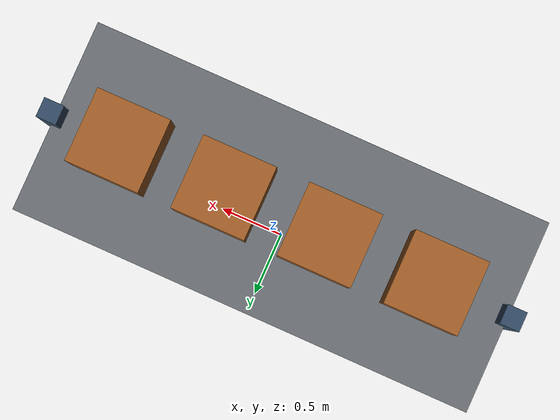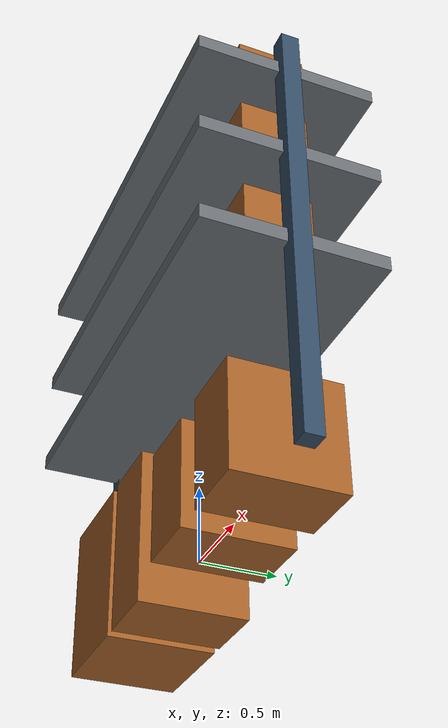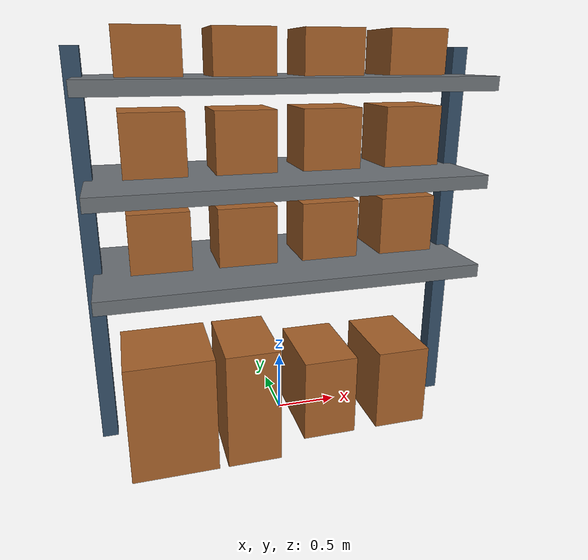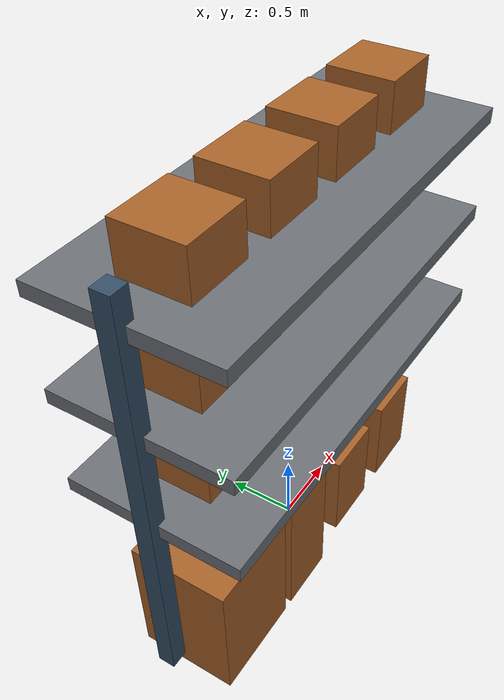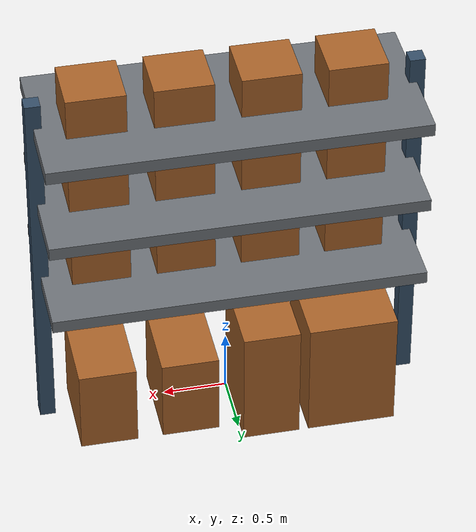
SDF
<?xml version="1.0"?>

<sdf version="1.9">
  <model name="warehouse_rack">
    <static>true</static>

    <!-- ================= RACK POSTS ================= -->

    <link name="left_post">
      <pose>-1.44 0 1.5 0 0 0</pose>

      <visual name="visual">
        <geometry>
          <box><size>0.12 0.12 3.0</size></box>
        </geometry>
        <material>
          <ambient>0.12 0.18 0.24 1</ambient>
          <diffuse>0.20 0.30 0.40 1</diffuse>
          <specular>0.25 0.25 0.25 1</specular>
        </material>
      </visual>

      <collision name="collision">
        <geometry>
          <box><size>0.12 0.12 3.0</size></box>
        </geometry>
      </collision>
    </link>

    <link name="right_post">
      <pose>1.44 0 1.5 0 0 0</pose>

      <visual name="visual">
        <geometry>
          <box><size>0.12 0.12 3.0</size></box>
        </geometry>
        <material>
          <ambient>0.12 0.18 0.24 1</ambient>
          <diffuse>0.20 0.30 0.40 1</diffuse>
          <specular>0.25 0.25 0.25 1</specular>
        </material>
      </visual>

      <collision name="collision">
        <geometry>
          <box><size>0.12 0.12 3.0</size></box>
        </geometry>
      </collision>
    </link>

    <!-- ================= SHELF LEVELS ================= -->

    <link name="shelf_2">
      <pose>0 0 1.35 0 0 0</pose>
      <visual name="visual">
        <geometry>
          <box><size>2.88 1.2 0.10</size></box>
        </geometry>
        <material>
          <ambient>0.28 0.30 0.32 1</ambient>
          <diffuse>0.42 0.44 0.46 1</diffuse>
          <specular>0.20 0.20 0.20 1</specular>
        </material>
      </visual>
      <collision name="collision">
        <geometry>
          <box><size>2.88 1.2 0.10</size></box>
        </geometry>
      </collision>
    </link>

    <link name="shelf_3">
      <pose>0 0 2.05 0 0 0</pose>
      <visual name="visual">
        <geometry>
          <box><size>2.88 1.2 0.10</size></box>
        </geometry>
        <material>
          <ambient>0.28 0.30 0.32 1</ambient>
          <diffuse>0.42 0.44 0.46 1</diffuse>
          <specular>0.20 0.20 0.20 1</specular>
        </material>
      </visual>
      <collision name="collision">
        <geometry>
          <box><size>2.88 1.2 0.10</size></box>
        </geometry>
      </collision>
    </link>

    <link name="shelf_4">
      <pose>0 0 2.75 0 0 0</pose>
      <visual name="visual">
        <geometry>
          <box><size>2.88 1.2 0.10</size></box>
        </geometry>
        <material>
          <ambient>0.28 0.30 0.32 1</ambient>
          <diffuse>0.42 0.44 0.46 1</diffuse>
          <specular>0.20 0.20 0.20 1</specular>
        </material>
      </visual>
      <collision name="collision">
        <geometry>
          <box><size>2.88 1.2 0.10</size></box>
        </geometry>
      </collision>
    </link>

    <!-- ================= BOXES LEVEL 1 ================= -->

    <link name="box_1_1">
      <pose>-0.95 0 0.225 0 0 0</pose>
      <visual name="visual">
        <geometry><box><size>0.70 0.70 1.0</size></box></geometry>
        <material>
          <ambient>0.45 0.25 0.10 1</ambient>
          <diffuse>0.65 0.38 0.16 1</diffuse>
          <specular>0.05 0.05 0.05 1</specular>
        </material>
      </visual>
      <collision name="collision">
        <geometry><box><size>0.70 0.70 1.0</size></box></geometry>
      </collision>
    </link>

    <link name="box_1_2">
      <pose>-0.30 0 0.225 0 0 0</pose>
      <visual name="visual">
        <geometry><box><size>0.45 0.70 1.0</size></box></geometry>
        <material>
          <ambient>0.45 0.25 0.10 1</ambient>
          <diffuse>0.65 0.38 0.16 1</diffuse>
          <specular>0.05 0.05 0.05 1</specular>
        </material>
      </visual>
      <collision name="collision">
        <geometry><box><size>0.45 0.70 1.0</size></box></geometry>
      </collision>
    </link>

    <link name="box_1_3">
      <pose>0.35 0 0.225 0 0 0</pose>
      <visual name="visual">
        <geometry><box><size>0.45 0.70 0.70</size></box></geometry>
        <material>
          <ambient>0.45 0.25 0.10 1</ambient>
          <diffuse>0.65 0.38 0.16 1</diffuse>
          <specular>0.05 0.05 0.05 1</specular>
        </material>
      </visual>
      <collision name="collision">
        <geometry><box><size>0.45 0.70 0.70</size></box></geometry>
      </collision>
    </link>

    <link name="box_1_4">
      <pose>1.00 0 0.225 0 0 0</pose>
      <visual name="visual">
        <geometry><box><size>0.45 0.70 0.70</size></box></geometry>
        <material>
          <ambient>0.45 0.25 0.10 1</ambient>
          <diffuse>0.65 0.38 0.16 1</diffuse>
          <specular>0.05 0.05 0.05 1</specular>
        </material>
      </visual>
      <collision name="collision">
        <geometry><box><size>0.45 0.70 0.70</size></box></geometry>
      </collision>
    </link>

    <!-- ================= BOXES LEVEL 2 ================= -->

    <link name="box_2_1">
      <pose>-0.95 0 1.65 0 0 0</pose>
      <visual name="visual">
        <geometry><box><size>0.45 0.45 0.45</size></box></geometry>
        <material>
          <ambient>0.45 0.25 0.10 1</ambient>
          <diffuse>0.65 0.38 0.16 1</diffuse>
          <specular>0.05 0.05 0.05 1</specular>
        </material>
      </visual>
      <collision name="collision">
        <geometry><box><size>0.45 0.45 0.45</size></box></geometry>
      </collision>
    </link>

    <link name="box_2_2">
      <pose>-0.30 0 1.65 0 0 0</pose>
      <visual name="visual">
        <geometry><box><size>0.45 0.45 0.45</size></box></geometry>
        <material>
          <ambient>0.45 0.25 0.10 1</ambient>
          <diffuse>0.65 0.38 0.16 1</diffuse>
          <specular>0.05 0.05 0.05 1</specular>
        </material>
      </visual>
      <collision name="collision">
        <geometry><box><size>0.45 0.45 0.45</size></box></geometry>
      </collision>
    </link>

    <link name="box_2_3">
      <pose>0.35 0 1.65 0 0 0</pose>
      <visual name="visual">
        <geometry><box><size>0.45 0.45 0.45</size></box></geometry>
        <material>
          <ambient>0.45 0.25 0.10 1</ambient>
          <diffuse>0.65 0.38 0.16 1</diffuse>
          <specular>0.05 0.05 0.05 1</specular>
        </material>
      </visual>
      <collision name="collision">
        <geometry><box><size>0.45 0.45 0.45</size></box></geometry>
      </collision>
    </link>

    <link name="box_2_4">
      <pose>1.00 0 1.65 0 0 0</pose>
      <visual name="visual">
        <geometry><box><size>0.45 0.45 0.45</size></box></geometry>
        <material>
          <ambient>0.45 0.25 0.10 1</ambient>
          <diffuse>0.65 0.38 0.16 1</diffuse>
          <specular>0.05 0.05 0.05 1</specular>
        </material>
      </visual>
      <collision name="collision">
        <geometry><box><size>0.45 0.45 0.45</size></box></geometry>
      </collision>
    </link>

    <!-- ================= BOXES LEVEL 3 ================= -->

    <link name="box_3_1">
      <pose>-0.95 0 2.35 0 0 0</pose>
      <visual name="visual">
        <geometry><box><size>0.45 0.45 0.45</size></box></geometry>
        <material>
          <ambient>0.45 0.25 0.10 1</ambient>
          <diffuse>0.65 0.38 0.16 1</diffuse>
          <specular>0.05 0.05 0.05 1</specular>
        </material>
      </visual>
      <collision name="collision">
        <geometry><box><size>0.45 0.45 0.45</size></box></geometry>
      </collision>
    </link>

    <link name="box_3_2">
      <pose>-0.30 0 2.35 0 0 0</pose>
      <visual name="visual">
        <geometry><box><size>0.45 0.45 0.45</size></box></geometry>
        <material>
          <ambient>0.45 0.25 0.10 1</ambient>
          <diffuse>0.65 0.38 0.16 1</diffuse>
          <specular>0.05 0.05 0.05 1</specular>
        </material>
      </visual>
      <collision name="collision">
        <geometry><box><size>0.45 0.45 0.45</size></box></geometry>
      </collision>
    </link>

    <link name="box_3_3">
      <pose>0.35 0 2.35 0 0 0</pose>
      <visual name="visual">
        <geometry><box><size>0.45 0.45 0.45</size></box></geometry>
        <material>
          <ambient>0.45 0.25 0.10 1</ambient>
          <diffuse>0.65 0.38 0.16 1</diffuse>
          <specular>0.05 0.05 0.05 1</specular>
        </material>
      </visual>
      <collision name="collision">
        <geometry><box><size>0.45 0.45 0.45</size></box></geometry>
      </collision>
    </link>

    <link name="box_3_4">
      <pose>1.00 0 2.35 0 0 0</pose>
      <visual name="visual">
        <geometry><box><size>0.45 0.45 0.45</size></box></geometry>
        <material>
          <ambient>0.45 0.25 0.10 1</ambient>
          <diffuse>0.65 0.38 0.16 1</diffuse>
          <specular>0.05 0.05 0.05 1</specular>
        </material>
      </visual>
      <collision name="collision">
        <geometry><box><size>0.45 0.45 0.45</size></box></geometry>
      </collision>
    </link>

    <!-- ================= BOXES LEVEL 4 ================= -->

    <link name="box_4_1">
      <pose>-0.95 0 2.95 0 0 0</pose>
      <visual name="visual">
        <geometry><box><size>0.45 0.45 0.35</size></box></geometry>
        <material>
          <ambient>0.45 0.25 0.10 1</ambient>
          <diffuse>0.65 0.38 0.16 1</diffuse>
          <specular>0.05 0.05 0.05 1</specular>
        </material>
      </visual>
      <collision name="collision">
        <geometry><box><size>0.45 0.45 0.35</size></box></geometry>
      </collision>
    </link>

    <link name="box_4_2">
      <pose>-0.30 0 2.95 0 0 0</pose>
      <visual name="visual">
        <geometry><box><size>0.45 0.45 0.35</size></box></geometry>
        <material>
          <ambient>0.45 0.25 0.10 1</ambient>
          <diffuse>0.65 0.38 0.16 1</diffuse>
          <specular>0.05 0.05 0.05 1</specular>
        </material>
      </visual>
      <collision name="collision">
        <geometry><box><size>0.45 0.45 0.35</size></box></geometry>
      </collision>
    </link>

    <link name="box_4_3">
      <pose>0.35 0 2.95 0 0 0</pose>
      <visual name="visual">
        <geometry><box><size>0.45 0.45 0.35</size></box></geometry>
        <material>
          <ambient>0.45 0.25 0.10 1</ambient>
          <diffuse>0.65 0.38 0.16 1</diffuse>
          <specular>0.05 0.05 0.05 1</specular>
        </material>
      </visual>
      <collision name="collision">
        <geometry><box><size>0.45 0.45 0.35</size></box></geometry>
      </collision>
    </link>

    <link name="box_4_4">
      <pose>1.00 0 2.95 0 0 0</pose>
      <visual name="visual">
        <geometry><box><size>0.45 0.45 0.35</size></box></geometry>
        <material>
          <ambient>0.45 0.25 0.10 1</ambient>
          <diffuse>0.65 0.38 0.16 1</diffuse>
          <specular>0.05 0.05 0.05 1</specular>
        </material>
      </visual>
      <collision name="collision">
        <geometry><box><size>0.45 0.45 0.35</size></box></geometry>
      </collision>
    </link>

  </model>
</sdf>
